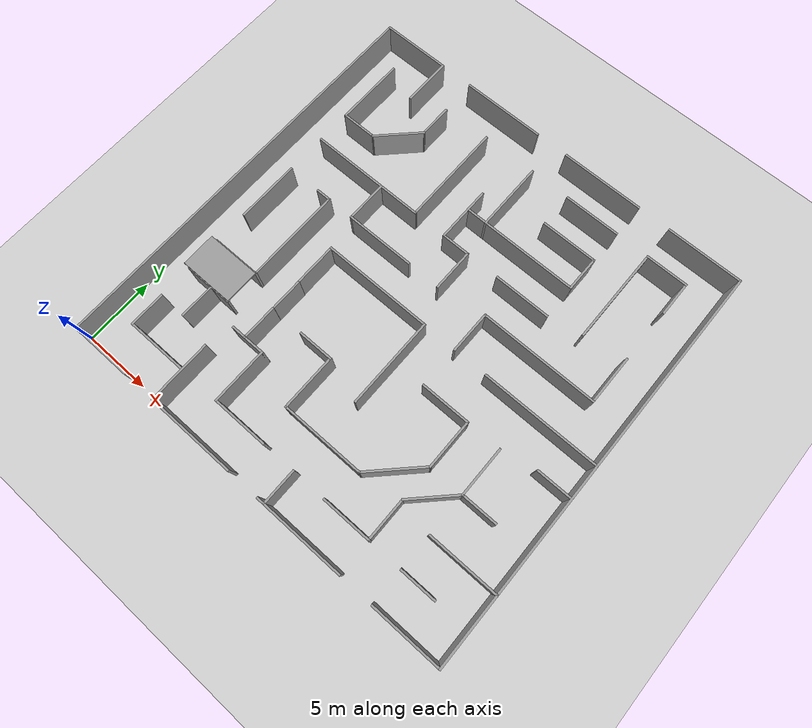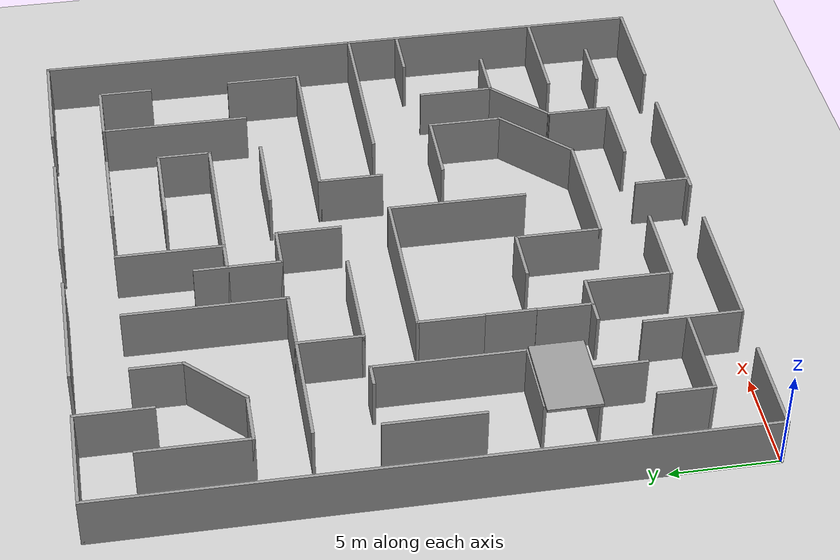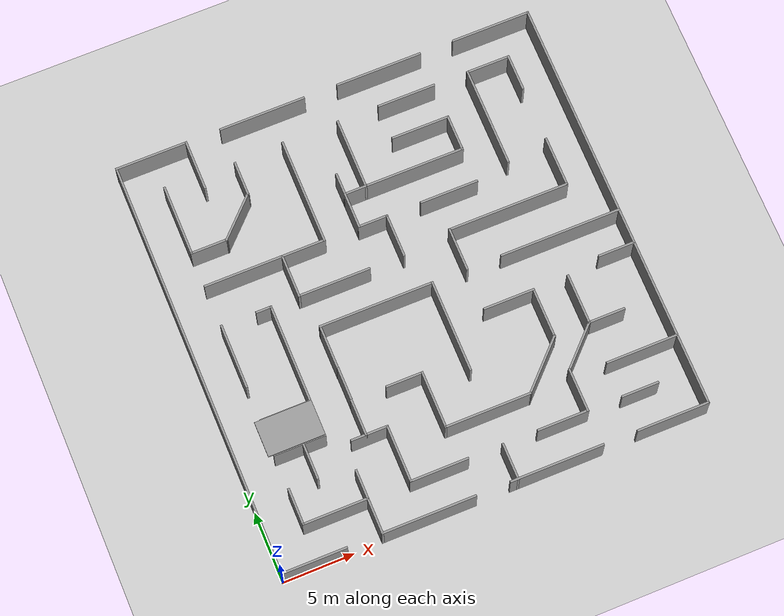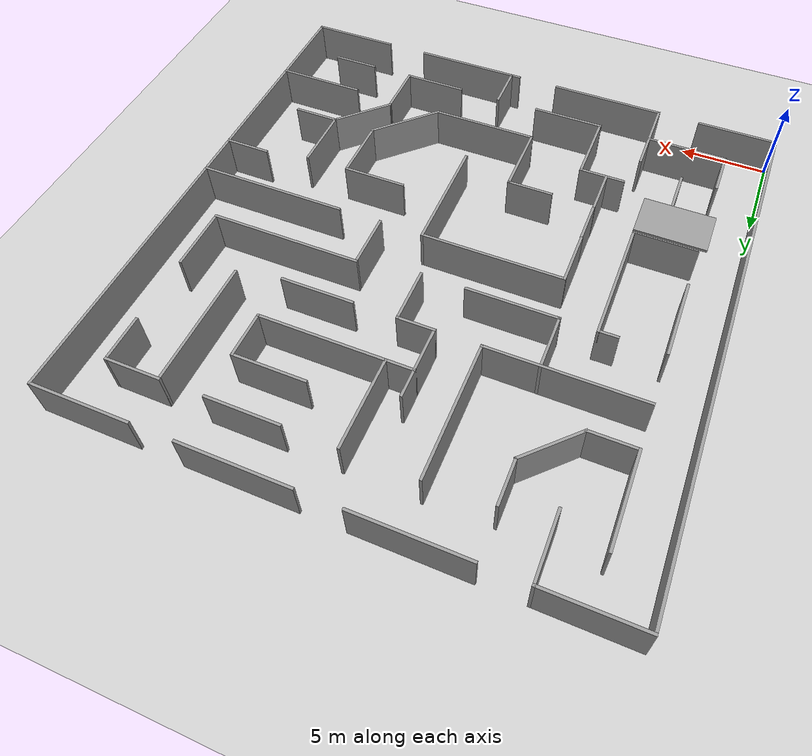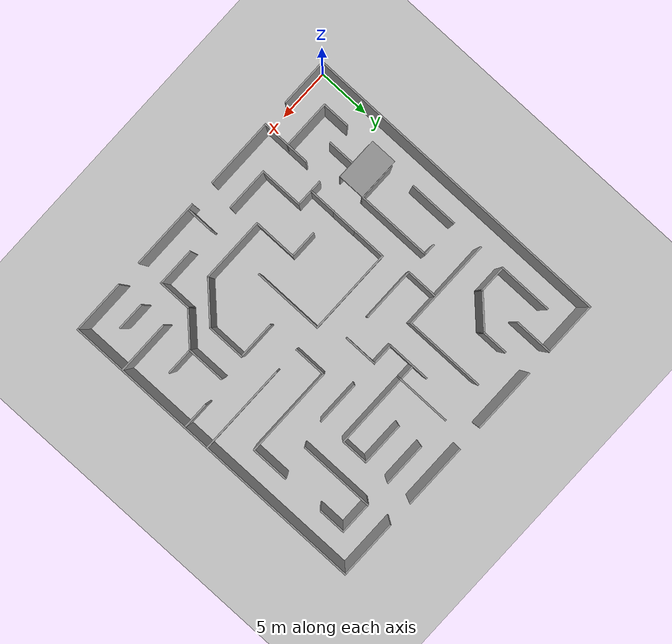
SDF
<sdf version="1.6">
 <world name="default">
  <model name="ground_plane">
   <pose>15 45 0 0 -0 0</pose>
   <static>1</static>
   <link name="link">
    <collision name="collision">
     <geometry><plane><normal>0 0 1</normal><size>100 100</size></plane></geometry>
     <surface><friction><ode><mu>100</mu><mu2>50</mu2></ode></friction></surface>
    </collision>
    <visual name="visual">
     <cast_shadows>0</cast_shadows>
     <geometry><plane><normal>0 0 1</normal><size>30 120</size></plane></geometry>
     <material>
      <script><uri>file://media/materials/scripts/gazebo.material</uri><name>Gazebo/Grey</name></script>
     </material>
    </visual>
   </link>
  </model>
  <model name="Untitled">
   <pose>15 15 0 0 -0 1.57</pose>
   <link name="Wall_101">
    <collision name="Wall_101_Collision">
     <geometry><box><size>2.65 0.15 2.5</size></box></geometry>
     <pose>0 0 1.25 0 -0 0</pose>
    </collision>
    <visual name="Wall_101_Visual">
     <pose>0 0 1.25 0 -0 0</pose>
     <geometry><box><size>2.65 0.15 2.5</size></box></geometry>
     <material>
      <script><uri>file://media/materials/scripts/gazebo.material</uri><name>Gazebo/Grey</name></script>
      <ambient>1 1 1 1</ambient>
     </material>
     <meta><layer>0</layer></meta>
    </visual>
    <pose>8.75 -7 0 0 -0 0</pose>
   </link>
   <link name="Wall_103">
    <collision name="Wall_103_Collision">
     <geometry><box><size>4.15 0.15 2.5</size></box></geometry>
     <pose>0 0 1.25 0 -0 0</pose>
    </collision>
    <visual name="Wall_103_Visual">
     <pose>0 0 1.25 0 -0 0</pose>
     <geometry><box><size>4.15 0.15 2.5</size></box></geometry>
     <material>
      <script><uri>file://media/materials/scripts/gazebo.material</uri><name>Gazebo/Grey</name></script>
      <ambient>1 1 1 1</ambient>
     </material>
     <meta><layer>0</layer></meta>
    </visual>
    <pose>10 -5 0 0 -0 1.5708</pose>
   </link>
   <link name="Wall_105">
    <collision name="Wall_105_Collision">
     <geometry><box><size>4.15 0.15 2.5</size></box></geometry>
     <pose>0 0 1.25 0 -0 0</pose>
    </collision>
    <visual name="Wall_105_Visual">
     <pose>0 0 1.25 0 -0 0</pose>
     <geometry><box><size>4.15 0.15 2.5</size></box></geometry>
     <material>
      <script><uri>file://media/materials/scripts/gazebo.material</uri><name>Gazebo/Grey</name></script>
      <ambient>1 1 1 1</ambient>
     </material>
     <meta><layer>0</layer></meta>
    </visual>
    <pose>12.5 -5 0 0 -0 -1.5708</pose>
   </link>
   <link name="Wall_107">
    <collision name="Wall_107_Collision">
     <geometry><box><size>7.15 0.15 2.5</size></box></geometry>
     <pose>0 0 1.25 0 -0 0</pose>
    </collision>
    <visual name="Wall_107_Visual">
     <pose>0 0 1.25 0 -0 0</pose>
     <geometry><box><size>7.15 0.15 2.5</size></box></geometry>
     <material>
      <script><uri>file://media/materials/scripts/gazebo.material</uri><name>Gazebo/Grey</name></script>
      <ambient>1 1 1 1</ambient>
     </material>
     <meta><layer>0</layer></meta>
    </visual>
    <pose>9 -9.5 0 0 -0 0</pose>
   </link>
   <link name="Wall_111">
    <collision name="Wall_111_Collision">
     <geometry><box><size>5.15 0.15 2.5</size></box></geometry>
     <pose>0 0 1.25 0 -0 0</pose>
    </collision>
    <visual name="Wall_111_Visual">
     <pose>0 0 1.25 0 -0 0</pose>
     <geometry><box><size>5.15 0.15 2.5</size></box></geometry>
     <material>
      <script><uri>file://media/materials/scripts/gazebo.material</uri><name>Gazebo/Grey</name></script>
      <ambient>1 1 1 1</ambient>
     </material>
     <meta><layer>0</layer></meta>
    </visual>
    <pose>10 0 0 0 -0 0</pose>
   </link>
   <link name="Wall_113">
    <collision name="Wall_113_Collision">
     <geometry><box><size>5.15 0.15 2.5</size></box></geometry>
     <pose>0 0 1.25 0 -0 0</pose>
    </collision>
    <visual name="Wall_113_Visual">
     <pose>0 0 1.25 0 -0 0</pose>
     <geometry><box><size>5.15 0.15 2.5</size></box></geometry>
     <material>
      <script><uri>file://media/materials/scripts/gazebo.material</uri><name>Gazebo/Grey</name></script>
      <ambient>1 1 1 1</ambient>
     </material>
     <meta><layer>0</layer></meta>
    </visual>
    <pose>10 12.5 0 0 -0 0</pose>
   </link>
   <link name="Wall_115">
    <collision name="Wall_115_Collision">
     <geometry><box><size>3.65 0.15 2.5</size></box></geometry>
     <pose>0 0 1.25 0 -0 0</pose>
    </collision>
    <visual name="Wall_115_Visual">
     <pose>0 0 1.25 0 -0 0</pose>
     <geometry><box><size>3.65 0.15 2.5</size></box></geometry>
     <material>
      <script><uri>file://media/materials/scripts/gazebo.material</uri><name>Gazebo/Grey</name></script>
      <ambient>1 1 1 1</ambient>
     </material>
     <meta><layer>0</layer></meta>
    </visual>
    <pose>13.25 10 0 0 -0 3.14159</pose>
   </link>
   <link name="Wall_117">
    <collision name="Wall_117_Collision">
     <geometry><box><size>2.65 0.15 2.5</size></box></geometry>
     <pose>0 0 1.25 0 -0 0</pose>
    </collision>
    <visual name="Wall_117_Visual">
     <pose>0 0 1.25 0 -0 0</pose>
     <geometry><box><size>2.65 0.15 2.5</size></box></geometry>
     <material>
      <script><uri>file://media/materials/scripts/gazebo.material</uri><name>Gazebo/Grey</name></script>
      <ambient>1 1 1 1</ambient>
     </material>
     <meta><layer>0</layer></meta>
    </visual>
    <pose>-13.75 -1.5 0 0 -0 0</pose>
   </link>
   <link name="Wall_119">
    <collision name="Wall_119_Collision">
     <geometry><box><size>6.15 0.15 2.5</size></box></geometry>
     <pose>0 0 1.25 0 -0 0</pose>
    </collision>
    <visual name="Wall_119_Visual">
     <pose>0 0 1.25 0 -0 0</pose>
     <geometry><box><size>6.15 0.15 2.5</size></box></geometry>
     <material>
      <script><uri>file://media/materials/scripts/gazebo.material</uri><name>Gazebo/Grey</name></script>
      <ambient>1 1 1 1</ambient>
     </material>
     <meta><layer>0</layer></meta>
    </visual>
    <pose>-10 -1.5 0 0 -0 -1.5708</pose>
   </link>
   <link name="Wall_121">
    <collision name="Wall_121_Collision">
     <geometry><box><size>4.15 0.15 2.5</size></box></geometry>
     <pose>0 0 1.25 0 -0 0</pose>
    </collision>
    <visual name="Wall_121_Visual">
     <pose>0 0 1.25 0 -0 0</pose>
     <geometry><box><size>4.15 0.15 2.5</size></box></geometry>
     <material>
      <script><uri>file://media/materials/scripts/gazebo.material</uri><name>Gazebo/Grey</name></script>
      <ambient>1 1 1 1</ambient>
     </material>
     <meta><layer>0</layer></meta>
    </visual>
    <pose>-8 1.5 0 0 -0 0</pose>
   </link>
   <link name="Wall_123">
    <collision name="Wall_123_Collision">
     <geometry><box><size>2.65 0.15 2.5</size></box></geometry>
     <pose>0 0 1.25 0 -0 0</pose>
    </collision>
    <visual name="Wall_123_Visual">
     <pose>0 0 1.25 0 -0 0</pose>
     <geometry><box><size>2.65 0.15 2.5</size></box></geometry>
     <material>
      <script><uri>file://media/materials/scripts/gazebo.material</uri><name>Gazebo/Grey</name></script>
      <ambient>1 1 1 1</ambient>
     </material>
     <meta><layer>0</layer></meta>
    </visual>
    <pose>-6 2.75 0 0 -0 1.5708</pose>
   </link>
   <link name="Wall_125">
    <collision name="Wall_125_Collision">
     <geometry><box><size>4.39264 0.15 2.5</size></box></geometry>
     <pose>0 0 1.25 0 -0 0</pose>
    </collision>
    <visual name="Wall_125_Visual">
     <pose>0 0 1.25 0 -0 0</pose>
     <geometry><box><size>4.39264 0.15 2.5</size></box></geometry>
     <material>
      <script><uri>file://media/materials/scripts/gazebo.material</uri><name>Gazebo/Grey</name></script>
      <ambient>1 1 1 1</ambient>
     </material>
     <meta><layer>0</layer></meta>
    </visual>
    <pose>-8.5 -6 0 0 -0 -0.785398</pose>
   </link>
   <link name="Wall_127">
    <collision name="Wall_127_Collision">
     <geometry><box><size>3.65 0.15 2.5</size></box></geometry>
     <pose>0 0 1.25 0 -0 0</pose>
    </collision>
    <visual name="Wall_127_Visual">
     <pose>0 0 1.25 0 -0 0</pose>
     <geometry><box><size>3.65 0.15 2.5</size></box></geometry>
     <material>
      <script><uri>file://media/materials/scripts/gazebo.material</uri><name>Gazebo/Grey</name></script>
      <ambient>1 1 1 1</ambient>
     </material>
     <meta><layer>0</layer></meta>
    </visual>
    <pose>-5.25 -7.5 0 0 -0 0</pose>
   </link>
   <link name="Wall_128">
    <collision name="Wall_128_Collision">
     <geometry><box><size>3.65 0.15 2.5</size></box></geometry>
     <pose>0 0 1.25 0 -0 0</pose>
    </collision>
    <visual name="Wall_128_Visual">
     <pose>0 0 1.25 0 -0 0</pose>
     <geometry><box><size>3.65 0.15 2.5</size></box></geometry>
     <material>
      <script><uri>file://media/materials/scripts/gazebo.material</uri><name>Gazebo/Grey</name></script>
      <ambient>1 1 1 1</ambient>
     </material>
     <meta><layer>0</layer></meta>
    </visual>
    <pose>-3.5 -5.75 0 0 -0 1.5708</pose>
   </link>
   <link name="Wall_132">
    <collision name="Wall_132_Collision">
     <geometry><box><size>3.65 0.15 2.5</size></box></geometry>
     <pose>0 0 1.25 0 -0 0</pose>
    </collision>
    <visual name="Wall_132_Visual">
     <pose>0 0 1.25 0 -0 0</pose>
     <geometry><box><size>3.65 0.15 2.5</size></box></geometry>
     <material>
      <script><uri>file://media/materials/scripts/gazebo.material</uri><name>Gazebo/Grey</name></script>
      <ambient>1 1 1 1</ambient>
     </material>
     <meta><layer>0</layer></meta>
    </visual>
    <pose>-12.5 -5.75 0 0 -0 -1.5708</pose>
   </link>
   <link name="Wall_134">
    <collision name="Wall_134_Collision">
     <geometry><box><size>3.15 0.15 2.5</size></box></geometry>
     <pose>0 0 1.25 0 -0 0</pose>
    </collision>
    <visual name="Wall_134_Visual">
     <pose>0 0 1.25 0 -0 0</pose>
     <geometry><box><size>3.15 0.15 2.5</size></box></geometry>
     <material>
      <script><uri>file://media/materials/scripts/gazebo.material</uri><name>Gazebo/Grey</name></script>
      <ambient>1 1 1 1</ambient>
     </material>
     <meta><layer>0</layer></meta>
    </visual>
    <pose>-11 -7.5 0 0 -0 0</pose>
   </link>
   <link name="Wall_135">
    <collision name="Wall_135_Collision">
     <geometry><box><size>3.68553 0.15 2.5</size></box></geometry>
     <pose>0 0 1.25 0 -0 0</pose>
    </collision>
    <visual name="Wall_135_Visual">
     <pose>0 0 1.25 0 -0 0</pose>
     <geometry><box><size>3.68553 0.15 2.5</size></box></geometry>
     <material>
      <script><uri>file://media/materials/scripts/gazebo.material</uri><name>Gazebo/Grey</name></script>
      <ambient>1 1 1 1</ambient>
     </material>
     <meta><layer>0</layer></meta>
    </visual>
    <pose>-8.25 -8.75 0 0 -0 -0.785398</pose>
   </link>
   <link name="Wall_136">
    <collision name="Wall_136_Collision">
     <geometry><box><size>3.65 0.15 2.5</size></box></geometry>
     <pose>0 0 1.25 0 -0 0</pose>
    </collision>
    <visual name="Wall_136_Visual">
     <pose>0 0 1.25 0 -0 0</pose>
     <geometry><box><size>3.65 0.15 2.5</size></box></geometry>
     <material>
      <script><uri>file://media/materials/scripts/gazebo.material</uri><name>Gazebo/Grey</name></script>
      <ambient>1 1 1 1</ambient>
     </material>
     <meta><layer>0</layer></meta>
    </visual>
    <pose>-5.25 -10 0 0 -0 0</pose>
   </link>
   <link name="Wall_138">
    <collision name="Wall_138_Collision">
     <geometry><box><size>2.65 0.15 2.5</size></box></geometry>
     <pose>0 0 1.25 0 -0 0</pose>
    </collision>
    <visual name="Wall_138_Visual">
     <pose>0 0 1.25 0 -0 0</pose>
     <geometry><box><size>2.65 0.15 2.5</size></box></geometry>
     <material>
      <script><uri>file://media/materials/scripts/gazebo.material</uri><name>Gazebo/Grey</name></script>
      <ambient>1 1 1 1</ambient>
     </material>
     <meta><layer>0</layer></meta>
    </visual>
    <pose>-7 -11.25 0 0 -0 -1.5708</pose>
   </link>
   <link name="Wall_140">
    <collision name="Wall_140_Collision">
     <geometry><box><size>2.65 0.15 2.5</size></box></geometry>
     <pose>0 0 1.25 0 -0 0</pose>
    </collision>
    <visual name="Wall_140_Visual">
     <pose>0 0 1.25 0 -0 0</pose>
     <geometry><box><size>2.65 0.15 2.5</size></box></geometry>
     <material>
      <script><uri>file://media/materials/scripts/gazebo.material</uri><name>Gazebo/Grey</name></script>
      <ambient>1 1 1 1</ambient>
     </material>
     <meta><layer>0</layer></meta>
    </visual>
    <pose>-12.5 -11.25 0 0 -0 1.5708</pose>
   </link>
   <link name="Wall_142">
    <collision name="Wall_142_Collision">
     <geometry><box><size>5.15 0.15 2.5</size></box></geometry>
     <pose>0 0 1.25 0 -0 0</pose>
    </collision>
    <visual name="Wall_142_Visual">
     <pose>0 0 1.25 0 -0 0</pose>
     <geometry><box><size>5.15 0.15 2.5</size></box></geometry>
     <material>
      <script><uri>file://media/materials/scripts/gazebo.material</uri><name>Gazebo/Grey</name></script>
      <ambient>1 1 1 1</ambient>
     </material>
     <meta><layer>0</layer></meta>
    </visual>
    <pose>-10 -12.5 0 0 -0 -1.5708</pose>
   </link>
   <link name="Wall_144">
    <collision name="Wall_144_Collision">
     <geometry><box><size>2.65 0.15 2.5</size></box></geometry>
     <pose>0 0 1.25 0 -0 0</pose>
    </collision>
    <visual name="Wall_144_Visual">
     <pose>0 0 1.25 0 -0 0</pose>
     <geometry><box><size>2.65 0.15 2.5</size></box></geometry>
     <material>
      <script><uri>file://media/materials/scripts/gazebo.material</uri><name>Gazebo/Grey</name></script>
      <ambient>1 1 1 1</ambient>
     </material>
     <meta><layer>0</layer></meta>
    </visual>
    <pose>-3 -13.75 0 0 -0 1.5708</pose>
   </link>
   <link name="Wall_146">
    <collision name="Wall_146_Collision">
     <geometry><box><size>3.15 0.15 2.5</size></box></geometry>
     <pose>0 0 1.25 0 -0 0</pose>
    </collision>
    <visual name="Wall_146_Visual">
     <pose>0 0 1.25 0 -0 0</pose>
     <geometry><box><size>3.15 0.15 2.5</size></box></geometry>
     <material>
      <script><uri>file://media/materials/scripts/gazebo.material</uri><name>Gazebo/Grey</name></script>
      <ambient>1 1 1 1</ambient>
     </material>
     <meta><layer>0</layer></meta>
    </visual>
    <pose>1 -4 0 0 -0 0</pose>
   </link>
   <link name="Wall_148">
    <collision name="Wall_148_Collision">
     <geometry><box><size>4.15 0.15 2.5</size></box></geometry>
     <pose>0 0 1.25 0 -0 0</pose>
    </collision>
    <visual name="Wall_148_Visual">
     <pose>0 0 1.25 0 -0 0</pose>
     <geometry><box><size>4.15 0.15 2.5</size></box></geometry>
     <material>
      <script><uri>file://media/materials/scripts/gazebo.material</uri><name>Gazebo/Grey</name></script>
      <ambient>1 1 1 1</ambient>
     </material>
     <meta><layer>0</layer></meta>
    </visual>
    <pose>5 -5 0 0 -0 -1.5708</pose>
   </link>
   <link name="Wall_150">
    <collision name="Wall_150_Collision">
     <geometry><box><size>8.65 0.15 2.5</size></box></geometry>
     <pose>0 0 1.25 0 -0 0</pose>
    </collision>
    <visual name="Wall_150_Visual">
     <pose>0 0 1.25 0 -0 0</pose>
     <geometry><box><size>8.65 0.15 2.5</size></box></geometry>
     <material>
      <script><uri>file://media/materials/scripts/gazebo.material</uri><name>Gazebo/Grey</name></script>
      <ambient>1 1 1 1</ambient>
     </material>
     <meta><layer>0</layer></meta>
    </visual>
    <pose>2.5 -8.25 0 0 -0 -1.5708</pose>
   </link>
   <link name="Wall_151">
    <collision name="Wall_151_Collision">
     <geometry><box><size>3.65 0.15 2.5</size></box></geometry>
     <pose>0 0 1.25 0 -0 0</pose>
    </collision>
    <visual name="Wall_151_Visual">
     <pose>0 0 1.25 0 -0 0</pose>
     <geometry><box><size>3.65 0.15 2.5</size></box></geometry>
     <material>
      <script><uri>file://media/materials/scripts/gazebo.material</uri><name>Gazebo/Grey</name></script>
      <ambient>1 1 1 1</ambient>
     </material>
     <meta><layer>0</layer></meta>
    </visual>
    <pose>4.25 -12.5 0 0 -0 0</pose>
   </link>
   <link name="Wall_153">
    <collision name="Wall_153_Collision">
     <geometry><box><size>3.65 0.15 2.5</size></box></geometry>
     <pose>0 0 1.25 0 -0 0</pose>
    </collision>
    <visual name="Wall_153_Visual">
     <pose>0 0 1.25 0 -0 0</pose>
     <geometry><box><size>3.65 0.15 2.5</size></box></geometry>
     <material>
      <script><uri>file://media/materials/scripts/gazebo.material</uri><name>Gazebo/Grey</name></script>
      <ambient>1 1 1 1</ambient>
     </material>
     <meta><layer>0</layer></meta>
    </visual>
    <pose>-7.5 10.75 0 0 -0 -1.5708</pose>
   </link>
   <link name="Wall_155">
    <collision name="Wall_155_Collision">
     <geometry><box><size>3.65 0.15 2.5</size></box></geometry>
     <pose>0 0 1.25 0 -0 0</pose>
    </collision>
    <visual name="Wall_155_Visual">
     <pose>0 0 1.25 0 -0 0</pose>
     <geometry><box><size>3.65 0.15 2.5</size></box></geometry>
     <material>
      <script><uri>file://media/materials/scripts/gazebo.material</uri><name>Gazebo/Grey</name></script>
      <ambient>1 1 1 1</ambient>
     </material>
     <meta><layer>0</layer></meta>
    </visual>
    <pose>-5 10.75 0 0 -0 -1.5708</pose>
   </link>
   <link name="Wall_157">
    <collision name="Wall_157_Collision">
     <geometry><box><size>2.65 0.15 2.5</size></box></geometry>
     <pose>0 0 1.25 0 -0 0</pose>
    </collision>
    <visual name="Wall_157_Visual">
     <pose>0 0 1.25 0 -0 0</pose>
     <geometry><box><size>2.65 0.15 2.5</size></box></geometry>
     <material>
      <script><uri>file://media/materials/scripts/gazebo.material</uri><name>Gazebo/Grey</name></script>
      <ambient>1 1 1 1</ambient>
     </material>
     <meta><layer>0</layer></meta>
    </visual>
    <pose>-7.25 6.5 0 0 -0 0</pose>
   </link>
   <link name="Wall_159">
    <collision name="Wall_159_Collision">
     <geometry><box><size>3.15 0.15 2.5</size></box></geometry>
     <pose>0 0 1.25 0 -0 0</pose>
    </collision>
    <visual name="Wall_159_Visual">
     <pose>0 0 1.25 0 -0 0</pose>
     <geometry><box><size>3.15 0.15 2.5</size></box></geometry>
     <material>
      <script><uri>file://media/materials/scripts/gazebo.material</uri><name>Gazebo/Grey</name></script>
      <ambient>1 1 1 1</ambient>
     </material>
     <meta><layer>0</layer></meta>
    </visual>
    <pose>-2 6.5 0 0 -0 3.14159</pose>
   </link>
   <link name="Wall_161">
    <collision name="Wall_161_Collision">
     <geometry><box><size>7.15 0.15 2.5</size></box></geometry>
     <pose>0 0 1.25 0 -0 0</pose>
    </collision>
    <visual name="Wall_161_Visual">
     <pose>0 0 1.25 0 -0 0</pose>
     <geometry><box><size>7.15 0.15 2.5</size></box></geometry>
     <material>
      <script><uri>file://media/materials/scripts/gazebo.material</uri><name>Gazebo/Grey</name></script>
      <ambient>1 1 1 1</ambient>
     </material>
     <meta><layer>0</layer></meta>
    </visual>
    <pose>-1.5 9 0 0 -0 0</pose>
   </link>
   <link name="Wall_163">
    <collision name="Wall_163_Collision">
     <geometry><box><size>1.15 0.15 2.5</size></box></geometry>
     <pose>0 0 1.25 0 -0 0</pose>
    </collision>
    <visual name="Wall_163_Visual">
     <pose>0 0 1.25 0 -0 0</pose>
     <geometry><box><size>1.15 0.15 2.5</size></box></geometry>
     <material>
      <script><uri>file://media/materials/scripts/gazebo.material</uri><name>Gazebo/Grey</name></script>
      <ambient>1 1 1 1</ambient>
     </material>
     <meta><layer>0</layer></meta>
    </visual>
    <pose>2 9.5 0 0 -0 1.5708</pose>
   </link>
   <link name="Wall_165">
    <collision name="Wall_165_Collision">
     <geometry><box><size>5.15 0.15 2.5</size></box></geometry>
     <pose>0 0 1.25 0 -0 0</pose>
    </collision>
    <visual name="Wall_165_Visual">
     <pose>0 0 1.25 0 -0 0</pose>
     <geometry><box><size>5.15 0.15 2.5</size></box></geometry>
     <material>
      <script><uri>file://media/materials/scripts/gazebo.material</uri><name>Gazebo/Grey</name></script>
      <ambient>1 1 1 1</ambient>
     </material>
     <meta><layer>0</layer></meta>
    </visual>
    <pose>2 4.5 0 0 -0 -1.5708</pose>
   </link>
   <link name="Wall_167">
    <collision name="Wall_167_Collision">
     <geometry><box><size>2.65 0.15 2.5</size></box></geometry>
     <pose>0 0 1.25 0 -0 0</pose>
    </collision>
    <visual name="Wall_167_Visual">
     <pose>0 0 1.25 0 -0 0</pose>
     <geometry><box><size>2.65 0.15 2.5</size></box></geometry>
     <material>
      <script><uri>file://media/materials/scripts/gazebo.material</uri><name>Gazebo/Grey</name></script>
      <ambient>1 1 1 1</ambient>
     </material>
     <meta><layer>0</layer></meta>
    </visual>
    <pose>7.5 11.25 0 0 -0 1.5708</pose>
   </link>
   <link name="Wall_169">
    <collision name="Wall_169_Collision">
     <geometry><box><size>8.65 0.15 2.5</size></box></geometry>
     <pose>0 0 1.25 0 -0 0</pose>
    </collision>
    <visual name="Wall_169_Visual">
     <pose>0 0 1.25 0 -0 0</pose>
     <geometry><box><size>8.65 0.15 2.5</size></box></geometry>
     <material>
      <script><uri>file://media/materials/scripts/gazebo.material</uri><name>Gazebo/Grey</name></script>
      <ambient>1 1 1 1</ambient>
     </material>
     <meta><layer>0</layer></meta>
    </visual>
    <pose>-0.5 -10.75 0 0 -0 -1.5708</pose>
   </link>
   <link name="Wall_171">
    <collision name="Wall_171_Collision">
     <geometry><box><size>3.15 0.15 2.5</size></box></geometry>
     <pose>0 0 1.25 0 -0 0</pose>
    </collision>
    <visual name="Wall_171_Visual">
     <pose>0 0 1.25 0 -0 0</pose>
     <geometry><box><size>3.15 0.15 2.5</size></box></geometry>
     <material>
      <script><uri>file://media/materials/scripts/gazebo.material</uri><name>Gazebo/Grey</name></script>
      <ambient>1 1 1 1</ambient>
     </material>
     <meta><layer>0</layer></meta>
    </visual>
    <pose>12.5 -11 0 0 -0 -1.5708</pose>
   </link>
   <link name="Wall_172">
    <collision name="Wall_172_Collision">
     <geometry><box><size>2.65 0.15 2.5</size></box></geometry>
     <pose>0 0 1.25 0 -0 0</pose>
    </collision>
    <visual name="Wall_172_Visual">
     <pose>0 0 1.25 0 -0 0</pose>
     <geometry><box><size>2.65 0.15 2.5</size></box></geometry>
     <material>
      <script><uri>file://media/materials/scripts/gazebo.material</uri><name>Gazebo/Grey</name></script>
      <ambient>1 1 1 1</ambient>
     </material>
     <meta><layer>0</layer></meta>
    </visual>
    <pose>11.25 -12.5 0 0 -0 3.14159</pose>
   </link>
   <link name="Wall_31">
    <collision name="Wall_31_Collision">
     <geometry><box><size>30.15 0.15 2.5</size></box></geometry>
     <pose>0 0 1.25 0 -0 0</pose>
    </collision>
    <visual name="Wall_31_Visual">
     <pose>0 0 1.25 0 -0 0</pose>
     <geometry><box><size>30.15 0.15 2.5</size></box></geometry>
     <material>
      <script><uri>file://media/materials/scripts/gazebo.material</uri><name>Gazebo/Grey</name></script>
      <ambient>1 1 1 1</ambient>
     </material>
     <meta><layer>0</layer></meta>
    </visual>
    <pose>-0 15 0 0 -0 0</pose>
   </link>
   <link name="Wall_35">
    <collision name="Wall_35_Collision">
     <geometry><box><size>30.15 0.15 2.5</size></box></geometry>
     <pose>0 0 1.25 0 -0 0</pose>
    </collision>
    <visual name="Wall_35_Visual">
     <pose>0 0 1.25 0 -0 0</pose>
     <geometry><box><size>30.15 0.15 2.5</size></box></geometry>
     <material>
      <script><uri>file://media/materials/scripts/gazebo.material</uri><name>Gazebo/Grey</name></script>
      <ambient>1 1 1 1</ambient>
     </material>
     <meta><layer>0</layer></meta>
    </visual>
    <pose>-0 -15 0 0 -0 0</pose>
   </link>
   <link name="Wall_37">
    <collision name="Wall_37_Collision">
     <geometry><box><size>4.65 0.15 2.5</size></box></geometry>
     <pose>0 0 1.25 0 -0 0</pose>
    </collision>
    <visual name="Wall_37_Visual">
     <pose>0 0 1.25 0 -0 0</pose>
     <geometry><box><size>4.65 0.15 2.5</size></box></geometry>
     <material>
      <script><uri>file://media/materials/scripts/gazebo.material</uri><name>Gazebo/Grey</name></script>
      <ambient>1 1 1 1</ambient>
     </material>
     <meta><layer>0</layer></meta>
    </visual>
    <pose>-12.75 8 0 0 -0 0</pose>
   </link>
   <link name="Wall_39">
    <collision name="Wall_39_Collision">
     <geometry><box><size>4.65 0.15 2.5</size></box></geometry>
     <pose>0 0 1.25 0 -0 0</pose>
    </collision>
    <visual name="Wall_39_Visual">
     <pose>0 0 1.25 0 -0 0</pose>
     <geometry><box><size>4.65 0.15 2.5</size></box></geometry>
     <material>
      <script><uri>file://media/materials/scripts/gazebo.material</uri><name>Gazebo/Grey</name></script>
      <ambient>1 1 1 1</ambient>
     </material>
     <meta><layer>0</layer></meta>
    </visual>
    <pose>-12.5 10.25 0 0 -0 1.5708</pose>
   </link>
   <link name="Wall_41">
    <collision name="Wall_41_Collision">
     <geometry><box><size>2.65 0.15 2.5</size></box></geometry>
     <pose>0 0 1.25 0 -0 0</pose>
    </collision>
    <visual name="Wall_41_Visual">
     <pose>0 0 1.25 0 -0 0</pose>
     <geometry><box><size>2.65 0.15 2.5</size></box></geometry>
     <material>
      <script><uri>file://media/materials/scripts/gazebo.material</uri><name>Gazebo/Grey</name></script>
      <ambient>1 1 1 1</ambient>
     </material>
     <meta><layer>0</layer></meta>
    </visual>
    <pose>-11.25 12.5 0 0 -0 0</pose>
   </link>
   <link name="Wall_43">
    <collision name="Wall_43_Collision">
     <geometry><box><size>2.65 0.15 2.5</size></box></geometry>
     <pose>0 0 1.25 0 -0 0</pose>
    </collision>
    <visual name="Wall_43_Visual">
     <pose>0 0 1.25 0 -0 0</pose>
     <geometry><box><size>2.65 0.15 2.5</size></box></geometry>
     <material>
      <script><uri>file://media/materials/scripts/gazebo.material</uri><name>Gazebo/Grey</name></script>
      <ambient>1 1 1 1</ambient>
     </material>
     <meta><layer>0</layer></meta>
    </visual>
    <pose>-8.75 10.5 0 0 -0 0</pose>
   </link>
   <link name="Wall_49">
    <collision name="Wall_49_Collision">
     <geometry><box><size>4.65 0.15 2.5</size></box></geometry>
     <pose>0 0 1.25 0 -0 0</pose>
    </collision>
    <visual name="Wall_49_Visual">
     <pose>0 0 1.25 0 -0 0</pose>
     <geometry><box><size>4.65 0.15 2.5</size></box></geometry>
     <material>
      <script><uri>file://media/materials/scripts/gazebo.material</uri><name>Gazebo/Grey</name></script>
      <ambient>1 1 1 1</ambient>
     </material>
     <meta><layer>0</layer></meta>
    </visual>
    <pose>-0.25 12.5 0 0 -0 3.14159</pose>
   </link>
   <link name="Wall_53">
    <collision name="Wall_53_Collision">
     <geometry><box><size>3.15 0.15 2.5</size></box></geometry>
     <pose>0 0 1.25 0 -0 0</pose>
    </collision>
    <visual name="Wall_53_Visual">
     <pose>0 0 1.25 0 -0 0</pose>
     <geometry><box><size>3.15 0.15 2.5</size></box></geometry>
     <material>
      <script><uri>file://media/materials/scripts/gazebo.material</uri><name>Gazebo/Grey</name></script>
      <ambient>1 1 1 1</ambient>
     </material>
     <meta><layer>0</layer></meta>
    </visual>
    <pose>3.5 7 0 0 -0 0</pose>
   </link>
   <link name="Wall_55">
    <collision name="Wall_55_Collision">
     <geometry><box><size>8.65 0.15 2.5</size></box></geometry>
     <pose>0 0 1.25 0 -0 0</pose>
    </collision>
    <visual name="Wall_55_Visual">
     <pose>0 0 1.25 0 -0 0</pose>
     <geometry><box><size>8.65 0.15 2.5</size></box></geometry>
     <material>
      <script><uri>file://media/materials/scripts/gazebo.material</uri><name>Gazebo/Grey</name></script>
      <ambient>1 1 1 1</ambient>
     </material>
     <meta><layer>0</layer></meta>
    </visual>
    <pose>5 8.25 0 0 -0 -1.5708</pose>
   </link>
   <link name="Wall_57">
    <collision name="Wall_57_Collision">
     <geometry><box><size>7.65 0.15 2.5</size></box></geometry>
     <pose>0 0 1.25 0 -0 0</pose>
    </collision>
    <visual name="Wall_57_Visual">
     <pose>0 0 1.25 0 -0 0</pose>
     <geometry><box><size>7.65 0.15 2.5</size></box></geometry>
     <material>
      <script><uri>file://media/materials/scripts/gazebo.material</uri><name>Gazebo/Grey</name></script>
      <ambient>1 1 1 1</ambient>
     </material>
     <meta><layer>0</layer></meta>
    </visual>
    <pose>8.75 4 0 0 -0 0</pose>
   </link>
   <link name="Wall_61">
    <collision name="Wall_61_Collision">
     <geometry><box><size>3.68553 0.15 2.5</size></box></geometry>
     <pose>0 0 1.25 0 -0 0</pose>
    </collision>
    <visual name="Wall_61_Visual">
     <pose>0 0 1.25 0 -0 0</pose>
     <geometry><box><size>3.68553 0.15 2.5</size></box></geometry>
     <material>
      <script><uri>file://media/materials/scripts/gazebo.material</uri><name>Gazebo/Grey</name></script>
      <ambient>1 1 1 1</ambient>
     </material>
     <meta><layer>0</layer></meta>
    </visual>
    <pose>8.75 8.75 0 0 -0 -0.785398</pose>
   </link>
   <link name="Wall_63">
    <collision name="Wall_63_Collision">
     <geometry><box><size>2.5 0.15 2.5</size></box></geometry>
     <pose>0 0 1.25 0 -0 0</pose>
    </collision>
    <visual name="Wall_63_Visual">
     <pose>0 0 1.25 0 -0 0</pose>
     <geometry><box><size>2.5 0.15 2.5</size></box></geometry>
     <material>
      <script><uri>file://media/materials/scripts/gazebo.material</uri><name>Gazebo/Grey</name></script>
      <ambient>1 1 1 1</ambient>
     </material>
     <meta><layer>0</layer></meta>
    </visual>
    <pose>11.175 7.5 0 0 -0 0</pose>
   </link>
   <link name="Wall_65">
    <collision name="Wall_65_Collision">
     <geometry><box><size>5.15 0.15 2.5</size></box></geometry>
     <pose>0 0 1.25 0 -0 0</pose>
    </collision>
    <visual name="Wall_65_Visual">
     <pose>0 0 1.25 0 -0 0</pose>
     <geometry><box><size>5.15 0.15 2.5</size></box></geometry>
     <material>
      <script><uri>file://media/materials/scripts/gazebo.material</uri><name>Gazebo/Grey</name></script>
      <ambient>1 1 1 1</ambient>
     </material>
     <meta><layer>0</layer></meta>
    </visual>
    <pose>15 12.5 0 0 -0 -1.5708</pose>
   </link>
   <link name="Wall_67">
    <collision name="Wall_67_Collision">
     <geometry><box><size>6.15 0.15 2.5</size></box></geometry>
     <pose>0 0 1.25 0 -0 0</pose>
    </collision>
    <visual name="Wall_67_Visual">
     <pose>0 0 1.25 0 -0 0</pose>
     <geometry><box><size>6.15 0.15 2.5</size></box></geometry>
     <material>
      <script><uri>file://media/materials/scripts/gazebo.material</uri><name>Gazebo/Grey</name></script>
      <ambient>1 1 1 1</ambient>
     </material>
     <meta><layer>0</layer></meta>
    </visual>
    <pose>15 4.5 0 0 -0 -1.5708</pose>
   </link>
   <link name="Wall_69">
    <collision name="Wall_69_Collision">
     <geometry><box><size>6.15 0.15 2.5</size></box></geometry>
     <pose>0 0 1.25 0 -0 0</pose>
    </collision>
    <visual name="Wall_69_Visual">
     <pose>0 0 1.25 0 -0 0</pose>
     <geometry><box><size>6.15 0.15 2.5</size></box></geometry>
     <material>
      <script><uri>file://media/materials/scripts/gazebo.material</uri><name>Gazebo/Grey</name></script>
      <ambient>1 1 1 1</ambient>
     </material>
     <meta><layer>0</layer></meta>
    </visual>
    <pose>15 -4 0 0 -0 -1.5708</pose>
   </link>
   <link name="Wall_71">
    <collision name="Wall_71_Collision">
     <geometry><box><size>5.65 0.15 2.5</size></box></geometry>
     <pose>0 0 1.25 0 -0 0</pose>
    </collision>
    <visual name="Wall_71_Visual">
     <pose>0 0 1.25 0 -0 0</pose>
     <geometry><box><size>5.65 0.15 2.5</size></box></geometry>
     <material>
      <script><uri>file://media/materials/scripts/gazebo.material</uri><name>Gazebo/Grey</name></script>
      <ambient>1 1 1 1</ambient>
     </material>
     <meta><layer>0</layer></meta>
    </visual>
    <pose>15 -12.25 0 0 -0 1.5708</pose>
   </link>
   <link name="Wall_73">
    <collision name="Wall_73_Collision">
     <geometry><box><size>4.65 0.15 2.5</size></box></geometry>
     <pose>0 0 1.25 0 -0 0</pose>
    </collision>
    <visual name="Wall_73_Visual">
     <pose>0 0 1.25 0 -0 0</pose>
     <geometry><box><size>4.65 0.15 2.5</size></box></geometry>
     <material>
      <script><uri>file://media/materials/scripts/gazebo.material</uri><name>Gazebo/Grey</name></script>
      <ambient>1 1 1 1</ambient>
     </material>
     <meta><layer>0</layer></meta>
    </visual>
    <pose>-15 12.75 0 0 -0 -1.5708</pose>
   </link>
   <link name="Wall_75">
    <collision name="Wall_75_Collision">
     <geometry><box><size>6.65 0.15 2.5</size></box></geometry>
     <pose>0 0 1.25 0 -0 0</pose>
    </collision>
    <visual name="Wall_75_Visual">
     <pose>0 0 1.25 0 -0 0</pose>
     <geometry><box><size>6.65 0.15 2.5</size></box></geometry>
     <material>
      <script><uri>file://media/materials/scripts/gazebo.material</uri><name>Gazebo/Grey</name></script>
      <ambient>1 1 1 1</ambient>
     </material>
     <meta><layer>0</layer></meta>
    </visual>
    <pose>-15 4.75 0 0 -0 -1.5708</pose>
   </link>
   <link name="Wall_77">
    <collision name="Wall_77_Collision">
     <geometry><box><size>6.65 0.15 2.5</size></box></geometry>
     <pose>0 0 1.25 0 -0 0</pose>
    </collision>
    <visual name="Wall_77_Visual">
     <pose>0 0 1.25 0 -0 0</pose>
     <geometry><box><size>6.65 0.15 2.5</size></box></geometry>
     <material>
      <script><uri>file://media/materials/scripts/gazebo.material</uri><name>Gazebo/Grey</name></script>
      <ambient>1 1 1 1</ambient>
     </material>
     <meta><layer>0</layer></meta>
    </visual>
    <pose>-15 -4.25 0 0 -0 -1.5708</pose>
   </link>
   <link name="Wall_79">
    <collision name="Wall_79_Collision">
     <geometry><box><size>5.15 0.15 2.5</size></box></geometry>
     <pose>0 0 1.25 0 -0 0</pose>
    </collision>
    <visual name="Wall_79_Visual">
     <pose>0 0 1.25 0 -0 0</pose>
     <geometry><box><size>5.15 0.15 2.5</size></box></geometry>
     <material>
      <script><uri>file://media/materials/scripts/gazebo.material</uri><name>Gazebo/Grey</name></script>
      <ambient>1 1 1 1</ambient>
     </material>
     <meta><layer>0</layer></meta>
    </visual>
    <pose>-15 -12.5 0 0 -0 -1.5708</pose>
   </link>
   <link name="Wall_81">
    <collision name="Wall_81_Collision">
     <geometry><box><size>4.15 0.15 2.5</size></box></geometry>
     <pose>0 0 1.25 0 -0 0</pose>
    </collision>
    <visual name="Wall_81_Visual">
     <pose>0 0 1.25 0 -0 0</pose>
     <geometry><box><size>4.15 0.15 2.5</size></box></geometry>
     <material>
      <script><uri>file://media/materials/scripts/gazebo.material</uri><name>Gazebo/Grey</name></script>
      <ambient>1 1 1 1</ambient>
     </material>
     <meta><layer>0</layer></meta>
    </visual>
    <pose>-12.5 3 0 0 -0 1.5708</pose>
   </link>
   <link name="Wall_83">
    <collision name="Wall_83_Collision">
     <geometry><box><size>4.15 0.15 2.5</size></box></geometry>
     <pose>0 0 1.25 0 -0 0</pose>
    </collision>
    <visual name="Wall_83_Visual">
     <pose>0 0 1.25 0 -0 0</pose>
     <geometry><box><size>4.15 0.15 2.5</size></box></geometry>
     <material>
      <script><uri>file://media/materials/scripts/gazebo.material</uri><name>Gazebo/Grey</name></script>
      <ambient>1 1 1 1</ambient>
     </material>
     <meta><layer>0</layer></meta>
    </visual>
    <pose>-10.5 5 0 0 -0 0</pose>
   </link>
   <link name="Wall_85">
    <collision name="Wall_85_Collision">
     <geometry><box><size>2.65 0.15 2.5</size></box></geometry>
     <pose>0 0 1.25 0 -0 0</pose>
    </collision>
    <visual name="Wall_85_Visual">
     <pose>0 0 1.25 0 -0 0</pose>
     <geometry><box><size>2.65 0.15 2.5</size></box></geometry>
     <material>
      <script><uri>file://media/materials/scripts/gazebo.material</uri><name>Gazebo/Grey</name></script>
      <ambient>1 1 1 1</ambient>
     </material>
     <meta><layer>0</layer></meta>
    </visual>
    <pose>-8.5 6.25 0 0 -0 1.5708</pose>
   </link>
   <link name="Wall_89">
    <collision name="Wall_89_Collision">
     <geometry><box><size>8.15 0.15 2.5</size></box></geometry>
     <pose>0 0 1.25 0 -0 0</pose>
    </collision>
    <visual name="Wall_89_Visual">
     <pose>0 0 1.25 0 -0 0</pose>
     <geometry><box><size>8.15 0.15 2.5</size></box></geometry>
     <material>
      <script><uri>file://media/materials/scripts/gazebo.material</uri><name>Gazebo/Grey</name></script>
      <ambient>1 1 1 1</ambient>
     </material>
     <meta><layer>0</layer></meta>
    </visual>
    <pose>-0.5 2.5 0 0 -0 -1.5708</pose>
   </link>
   <link name="Wall_91">
    <collision name="Wall_91_Collision">
     <geometry><box><size>6.65 0.15 2.5</size></box></geometry>
     <pose>0 0 1.25 0 -0 0</pose>
    </collision>
    <visual name="Wall_91_Visual">
     <pose>0 0 1.25 0 -0 0</pose>
     <geometry><box><size>6.65 0.15 2.5</size></box></geometry>
     <material>
      <script><uri>file://media/materials/scripts/gazebo.material</uri><name>Gazebo/Grey</name></script>
      <ambient>1 1 1 1</ambient>
     </material>
     <meta><layer>0</layer></meta>
    </visual>
    <pose>-3.75 -1.5 0 0 -0 3.14159</pose>
   </link>
   <link name="Wall_93">
    <collision name="Wall_93_Collision">
     <geometry><box><size>3.15 0.15 2.5</size></box></geometry>
     <pose>0 0 1.25 0 -0 0</pose>
    </collision>
    <visual name="Wall_93_Visual">
     <pose>0 0 1.25 0 -0 0</pose>
     <geometry><box><size>3.15 0.15 2.5</size></box></geometry>
     <material>
      <script><uri>file://media/materials/scripts/gazebo.material</uri><name>Gazebo/Grey</name></script>
      <ambient>1 1 1 1</ambient>
     </material>
     <meta><layer>0</layer></meta>
    </visual>
    <pose>3.5 -0.5 0 0 -0 0</pose>
   </link>
   <link name="Wall_95">
    <collision name="Wall_95_Collision">
     <geometry><box><size>2.15 0.15 2.5</size></box></geometry>
     <pose>0 0 1.25 0 -0 0</pose>
    </collision>
    <visual name="Wall_95_Visual">
     <pose>0 0 1.25 0 -0 0</pose>
     <geometry><box><size>2.15 0.15 2.5</size></box></geometry>
     <material>
      <script><uri>file://media/materials/scripts/gazebo.material</uri><name>Gazebo/Grey</name></script>
      <ambient>1 1 1 1</ambient>
     </material>
     <meta><layer>0</layer></meta>
    </visual>
    <pose>5 0.5 0 0 -0 1.5708</pose>
   </link>
   <link name="Wall_97">
    <collision name="Wall_97_Collision">
     <geometry><box><size>4.15 0.15 2.5</size></box></geometry>
     <pose>0 0 1.25 0 -0 0</pose>
    </collision>
    <visual name="Wall_97_Visual">
     <pose>0 0 1.25 0 -0 0</pose>
     <geometry><box><size>4.15 0.15 2.5</size></box></geometry>
     <material>
      <script><uri>file://media/materials/scripts/gazebo.material</uri><name>Gazebo/Grey</name></script>
      <ambient>1 1 1 1</ambient>
     </material>
     <meta><layer>0</layer></meta>
    </visual>
    <pose>7 1.5 0 0 -0 0</pose>
   </link>
   <link name="Wall_99">
    <collision name="Wall_99_Collision">
     <geometry><box><size>8.65 0.15 2.5</size></box></geometry>
     <pose>0 0 1.25 0 -0 0</pose>
    </collision>
    <visual name="Wall_99_Visual">
     <pose>0 0 1.25 0 -0 0</pose>
     <geometry><box><size>8.65 0.15 2.5</size></box></geometry>
     <material>
      <script><uri>file://media/materials/scripts/gazebo.material</uri><name>Gazebo/Grey</name></script>
      <ambient>1 1 1 1</ambient>
     </material>
     <meta><layer>0</layer></meta>
    </visual>
    <pose>7.5 -2.75 0 0 -0 -1.5708</pose>
   </link>
   <static>1</static>
  </model>
  <model name="barrier_clone_clone">
   <link name="link_0">
    <inertial>
     <mass>1</mass>
     <inertia>
      <ixx>0.166667</ixx>
      <ixy>0</ixy>
      <ixz>0</ixz>
      <iyy>0.166667</iyy>
      <iyz>0</iyz>
      <izz>0.166667</izz>
     </inertia>
    </inertial>
    <pose>1e-06 1e-06 0 0 -0 0</pose>
    <visual name="visual">
     <pose>0 0 0.75 0 -0 0</pose>
     <geometry><box><size>2.35 0.15 2.5</size></box></geometry>
     <material>
      <lighting>1</lighting>
      <script><uri>file://media/materials/scripts/gazebo.material</uri><name>Gazebo/Grey</name></script>
      <shader type="pixel"><normal_map>__default__</normal_map></shader>
      <ambient>0.3 0.3 0.3 1</ambient>
      <diffuse>0.7 0.7 0.7 1</diffuse>
      <specular>0.01 0.01 0.01 1</specular>
      <emissive>0 0 0 1</emissive>
     </material>
    </visual>
    <collision name="collision">
     <pose>0 0 0.75 0 -0 0</pose>
     <geometry><box><size>2.35 0.15 2.5</size></box></geometry>
     <surface>
      <friction>
       <ode><mu>1</mu><mu2>1</mu2><fdir1>0 0 0</fdir1><slip1>0</slip1><slip2>0</slip2></ode>
       <torsional>
        <coefficient>1</coefficient>
        <patch_radius>0</patch_radius>
        <surface_radius>0</surface_radius>
        <use_patch_radius>1</use_patch_radius>
        <ode><slip>0</slip></ode>
       </torsional>
      </friction>
      <bounce><restitution_coefficient>0</restitution_coefficient><threshold>1e+06</threshold></bounce>
      <contact>
       <collide_without_contact>0</collide_without_contact>
       <collide_without_contact_bitmask>1</collide_without_contact_bitmask>
       <collide_bitmask>1</collide_bitmask>
       <ode>
        <soft_cfm>0</soft_cfm>
        <soft_erp>0.2</soft_erp>
        <kp>1e+13</kp>
        <kd>1</kd>
        <max_vel>0.01</max_vel>
        <min_depth>0</min_depth>
       </ode>
       <bullet>
        <split_impulse>1</split_impulse>
        <split_impulse_penetration_threshold>-0.01</split_impulse_penetration_threshold>
        <soft_cfm>0</soft_cfm>
        <soft_erp>0.2</soft_erp>
        <kp>1e+13</kp>
        <kd>1</kd>
       </bullet>
      </contact>
     </surface>
    </collision>
   </link>
   <static>0</static>
   <pose>8.51231 10.2552 0.499998 3e-06 2e-06 1.56981</pose>
  </model>
  <model name="proof">
   <link name="link_0">
    <inertial>
     <mass>1</mass>
     <inertia>
      <ixx>0.166667</ixx>
      <ixy>0</ixy>
      <ixz>0</ixz>
      <iyy>0.166667</iyy>
      <iyz>0</iyz>
      <izz>0.166667</izz>
     </inertia>
    </inertial>
    <pose>-0 -1e-06 0 0 -0 0</pose>
    <visual name="visual">
     <pose>0 0 2 0 -0 0</pose>
     <geometry><box><size>4 2.5 0.15</size></box></geometry>
     <material>
      <lighting>1</lighting>
      <script><uri>file://media/materials/scripts/gazebo.material</uri><name>Gazebo/Grey</name></script>
      <shader type="pixel"><normal_map>__default__</normal_map></shader>
      <ambient>0.3 0.3 0.3 1</ambient>
      <diffuse>0.7 0.7 0.7 1</diffuse>
      <specular>0.01 0.01 0.01 1</specular>
      <emissive>0 0 0 1</emissive>
     </material>
    </visual>
    <collision name="collision">
     <pose>0 0 2 0 -0 0</pose>
     <geometry><box><size>4 2.5 0.15</size></box></geometry>
     <surface>
      <friction>
       <ode><mu>1</mu><mu2>1</mu2><fdir1>0 0 0</fdir1><slip1>0</slip1><slip2>0</slip2></ode>
       <torsional>
        <coefficient>1</coefficient>
        <patch_radius>0</patch_radius>
        <surface_radius>0</surface_radius>
        <use_patch_radius>1</use_patch_radius>
        <ode><slip>0</slip></ode>
       </torsional>
      </friction>
      <bounce><restitution_coefficient>0</restitution_coefficient><threshold>1e+06</threshold></bounce>
      <contact>
       <collide_without_contact>0</collide_without_contact>
       <collide_without_contact_bitmask>1</collide_without_contact_bitmask>
       <collide_bitmask>1</collide_bitmask>
       <ode>
        <soft_cfm>0</soft_cfm>
        <soft_erp>0.2</soft_erp>
        <kp>1e+13</kp>
        <kd>1</kd>
        <max_vel>0.01</max_vel>
        <min_depth>0</min_depth>
       </ode>
       <bullet>
        <split_impulse>1</split_impulse>
        <split_impulse_penetration_threshold>-0.01</split_impulse_penetration_threshold>
        <soft_cfm>0</soft_cfm>
        <soft_erp>0.2</soft_erp>
        <kp>1e+13</kp>
        <kd>1</kd>
       </bullet>
      </contact>
     </surface>
    </collision>
   </link>
   <static>0</static>
   <pose>4.05987 8.74866 0.575 0 -1e-06 -0.000676</pose>
  </model>
 </world>
</sdf>
